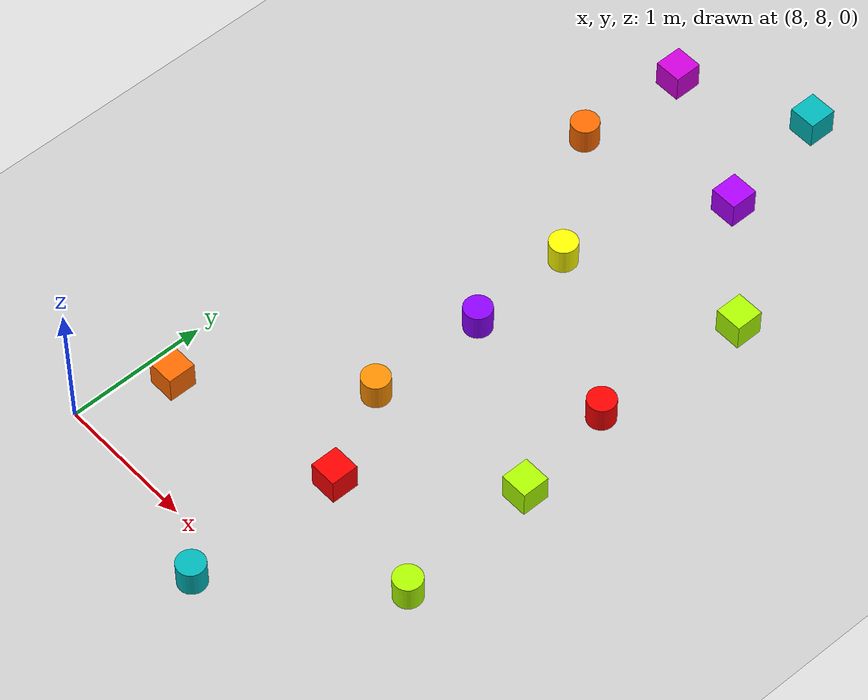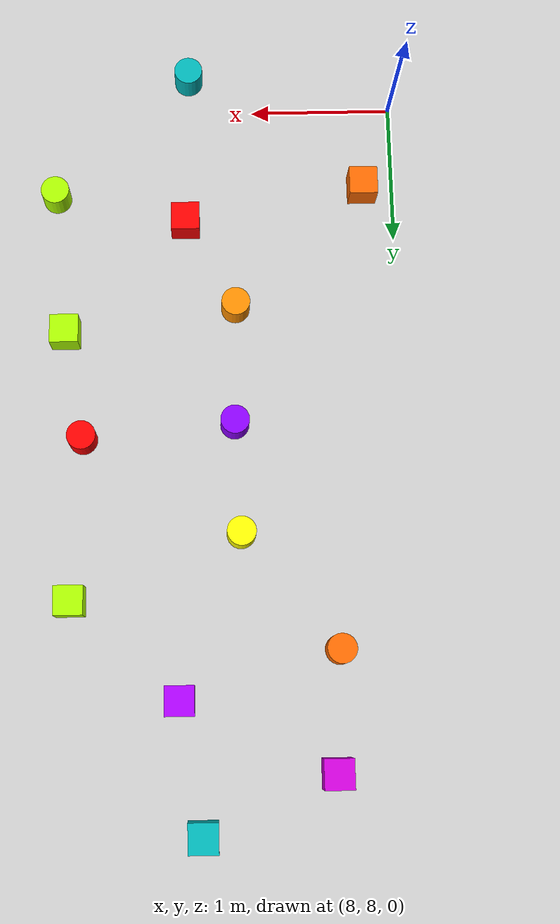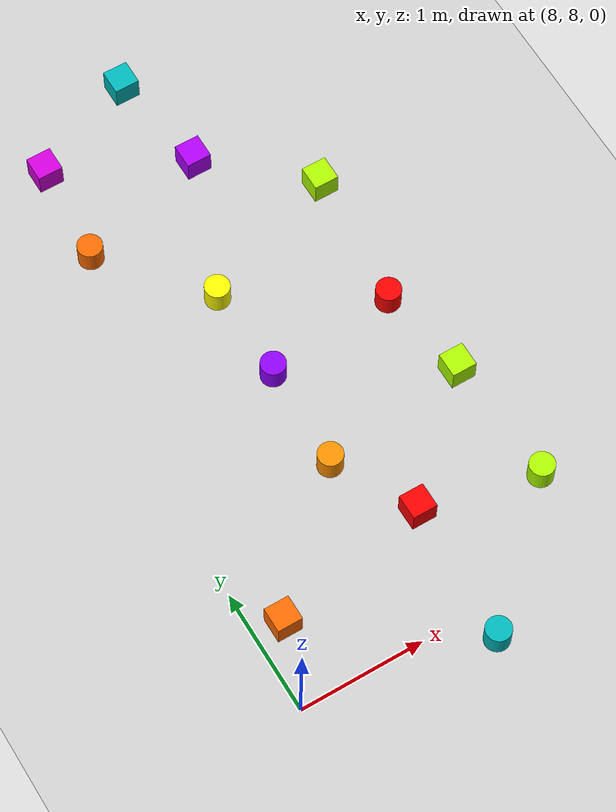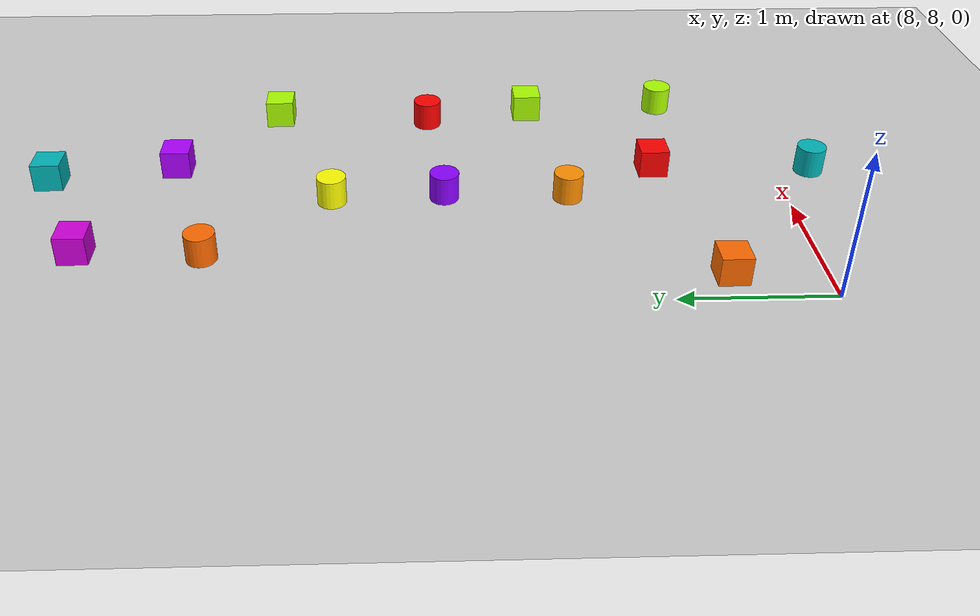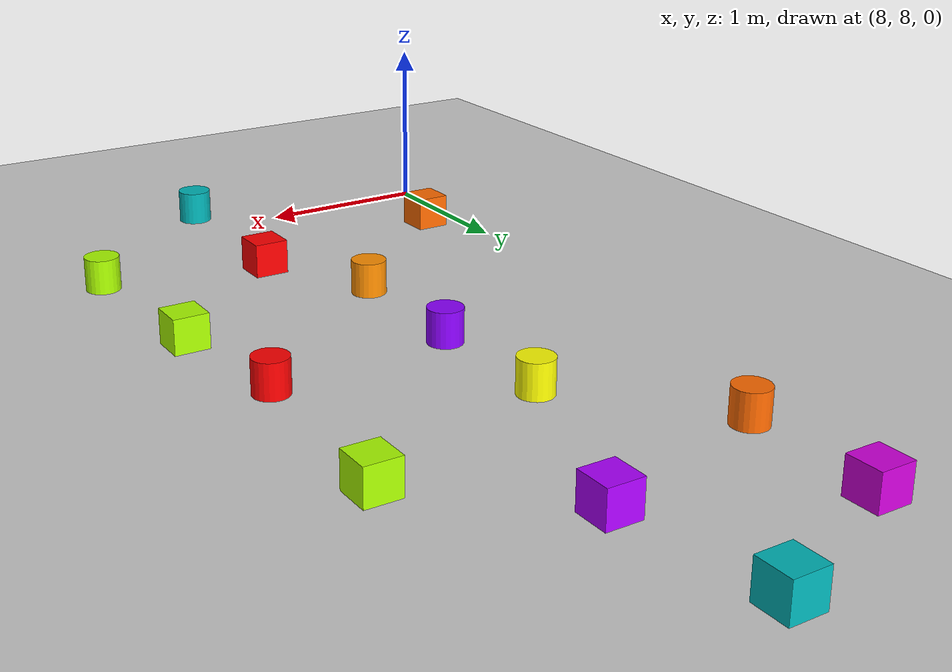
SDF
<sdf version="1.7">
 <world name="default">
  <model name="ground_plane">
   <static>1</static>
   <link name="link">
    <collision name="collision">
     <geometry><plane><normal>0 0 1</normal><size>100 100</size></plane></geometry>
     <surface><friction><ode><mu>100</mu><mu2>50</mu2></ode></friction></surface>
    </collision>
    <visual name="visual">
     <cast_shadows>0</cast_shadows>
     <geometry><plane><normal>0 0 1</normal><size>100 100</size></plane></geometry>
     <material>
      <script><uri>file://media/materials/scripts/gazebo.material</uri><name>Gazebo/Grey</name></script>
     </material>
    </visual>
   </link>
  </model>
  <model name="cube_or">
   <link name="link_2">
    <pose>0 0 0.1 0 -0 0</pose>
    <inertial>
     <mass>1</mass>
     <inertia>
      <ixx>0.166667</ixx>
      <ixy>0</ixy>
      <ixz>0</ixz>
      <iyy>0.166667</iyy>
      <iyz>0</iyz>
      <izz>0.166667</izz>
     </inertia>
    </inertial>
    <visual name="visual">
     <geometry><box><size>0.2 0.2 0.2</size></box></geometry>
     <material>
      <lighting>1</lighting>
      <script><uri>file://media/materials/scripts/gazebo.material</uri><name>Gazebo/Grey</name></script>
      <ambient>1 0.416 0 1</ambient>
      <diffuse>1 0.416 0 1</diffuse>
      <specular>0 0 0 1</specular>
      <emissive>0 0 0 1</emissive>
      <shader type="vertex"><normal_map>__default__</normal_map></shader>
     </material>
    </visual>
    <collision name="collision">
     <geometry><box><size>0.2 0.2 0.2</size></box></geometry>
     <surface>
      <friction>
       <ode><mu>1</mu><mu2>1</mu2><fdir1>0 0 0</fdir1><slip1>0</slip1><slip2>0</slip2></ode>
       <torsional>
        <coefficient>1</coefficient>
        <patch_radius>0</patch_radius>
        <surface_radius>0</surface_radius>
        <use_patch_radius>1</use_patch_radius>
        <ode><slip>0</slip></ode>
       </torsional>
      </friction>
      <bounce><restitution_coefficient>0</restitution_coefficient><threshold>1e+06</threshold></bounce>
      <contact>
       <collide_without_contact>0</collide_without_contact>
       <collide_without_contact_bitmask>1</collide_without_contact_bitmask>
       <collide_bitmask>1</collide_bitmask>
       <ode>
        <soft_cfm>0</soft_cfm>
        <soft_erp>0.2</soft_erp>
        <kp>1e+13</kp>
        <kd>1</kd>
        <max_vel>0.01</max_vel>
        <min_depth>0</min_depth>
       </ode>
       <bullet>
        <split_impulse>1</split_impulse>
        <split_impulse_penetration_threshold>-0.01</split_impulse_penetration_threshold>
        <soft_cfm>0</soft_cfm>
        <soft_erp>0.2</soft_erp>
        <kp>1e+13</kp>
        <kd>1</kd>
       </bullet>
      </contact>
     </surface>
    </collision>
   </link>
   <static>1</static>
   <pose>8.22157 8.6173 0 0 -0 0</pose>
  </model>
  <model name="cylinder_o">
   <link name="link_0">
    <pose>0 0 0.1 0 -0 0</pose>
    <inertial>
     <mass>1</mass>
     <inertia><ixx>0.145833</ixx><ixy>0</ixy><ixz>0</ixz><iyy>0.145833</iyy><iyz>0</iyz><izz>0.125</izz></inertia>
    </inertial>
    <visual name="visual">
     <geometry><cylinder><radius>0.1</radius><length>0.2</length></cylinder></geometry>
     <material>
      <lighting>1</lighting>
      <script><uri>file://media/materials/scripts/gazebo.material</uri><name>Gazebo/Grey</name></script>
      <ambient>1 0.561 0 1</ambient>
      <diffuse>1 0.561 0 1</diffuse>
      <specular>0 0 0 1</specular>
      <emissive>0 0 0 1</emissive>
      <shader type="vertex"><normal_map>__default__</normal_map></shader>
     </material>
    </visual>
    <collision name="collision">
     <geometry><cylinder><radius>0.1</radius><length>0.2</length></cylinder></geometry>
     <surface>
      <friction>
       <ode><mu>1</mu><mu2>1</mu2><fdir1>0 0 0</fdir1><slip1>0</slip1><slip2>0</slip2></ode>
       <torsional>
        <coefficient>1</coefficient>
        <patch_radius>0</patch_radius>
        <surface_radius>0</surface_radius>
        <use_patch_radius>1</use_patch_radius>
        <ode><slip>0</slip></ode>
       </torsional>
      </friction>
      <bounce><restitution_coefficient>0</restitution_coefficient><threshold>1e+06</threshold></bounce>
      <contact>
       <collide_without_contact>0</collide_without_contact>
       <collide_without_contact_bitmask>1</collide_without_contact_bitmask>
       <collide_bitmask>1</collide_bitmask>
       <ode>
        <soft_cfm>0</soft_cfm>
        <soft_erp>0.2</soft_erp>
        <kp>1e+13</kp>
        <kd>1</kd>
        <max_vel>0.01</max_vel>
        <min_depth>0</min_depth>
       </ode>
       <bullet>
        <split_impulse>1</split_impulse>
        <split_impulse_penetration_threshold>-0.01</split_impulse_penetration_threshold>
        <soft_cfm>0</soft_cfm>
        <soft_erp>0.2</soft_erp>
        <kp>1e+13</kp>
        <kd>1</kd>
       </bullet>
      </contact>
     </surface>
    </collision>
   </link>
   <static>1</static>
   <pose>9.15065 9.50932 0 0 -0 0</pose>
  </model>
  <model name="cube_r">
   <link name="link_2">
    <pose>0 0 0.1 0 -0 0</pose>
    <inertial>
     <mass>1</mass>
     <inertia>
      <ixx>0.166667</ixx>
      <ixy>0</ixy>
      <ixz>0</ixz>
      <iyy>0.166667</iyy>
      <iyz>0</iyz>
      <izz>0.166667</izz>
     </inertia>
    </inertial>
    <visual name="visual">
     <geometry><box><size>0.2 0.2 0.2</size></box></geometry>
     <material>
      <lighting>1</lighting>
      <script><uri>file://media/materials/scripts/gazebo.material</uri><name>Gazebo/Grey</name></script>
      <ambient>1 0 0 1</ambient>
      <diffuse>1 0 0 1</diffuse>
      <specular>0 0 0 1</specular>
      <emissive>0 0 0 1</emissive>
      <shader type="vertex"><normal_map>__default__</normal_map></shader>
     </material>
    </visual>
    <collision name="collision">
     <geometry><box><size>0.2 0.2 0.2</size></box></geometry>
     <surface>
      <friction>
       <ode><mu>1</mu><mu2>1</mu2><fdir1>0 0 0</fdir1><slip1>0</slip1><slip2>0</slip2></ode>
       <torsional>
        <coefficient>1</coefficient>
        <patch_radius>0</patch_radius>
        <surface_radius>0</surface_radius>
        <use_patch_radius>1</use_patch_radius>
        <ode><slip>0</slip></ode>
       </torsional>
      </friction>
      <bounce><restitution_coefficient>0</restitution_coefficient><threshold>1e+06</threshold></bounce>
      <contact>
       <collide_without_contact>0</collide_without_contact>
       <collide_without_contact_bitmask>1</collide_without_contact_bitmask>
       <collide_bitmask>1</collide_bitmask>
       <ode>
        <soft_cfm>0</soft_cfm>
        <soft_erp>0.2</soft_erp>
        <kp>1e+13</kp>
        <kd>1</kd>
        <max_vel>0.01</max_vel>
        <min_depth>0</min_depth>
       </ode>
       <bullet>
        <split_impulse>1</split_impulse>
        <split_impulse_penetration_threshold>-0.01</split_impulse_penetration_threshold>
        <soft_cfm>0</soft_cfm>
        <soft_erp>0.2</soft_erp>
        <kp>1e+13</kp>
        <kd>1</kd>
       </bullet>
      </contact>
     </surface>
    </collision>
   </link>
   <static>1</static>
   <pose>9.49713 8.86777 0 0 -0 0</pose>
  </model>
  <model name="cube_gy">
   <link name="link_2">
    <pose>0 0 0.1 0 -0 0</pose>
    <inertial>
     <mass>1</mass>
     <inertia>
      <ixx>0.166667</ixx>
      <ixy>0</ixy>
      <ixz>0</ixz>
      <iyy>0.166667</iyy>
      <iyz>0</iyz>
      <izz>0.166667</izz>
     </inertia>
    </inertial>
    <visual name="visual">
     <geometry><box><size>0.2 0.2 0.2</size></box></geometry>
     <material>
      <lighting>1</lighting>
      <script><uri>file://media/materials/scripts/gazebo.material</uri><name>Gazebo/Grey</name></script>
      <ambient>0.675 1 0 1</ambient>
      <diffuse>0.675 1 0 1</diffuse>
      <specular>0 0 0 1</specular>
      <emissive>0 0 0 1</emissive>
      <shader type="vertex"><normal_map>__default__</normal_map></shader>
     </material>
    </visual>
    <collision name="collision">
     <geometry><box><size>0.2 0.2 0.2</size></box></geometry>
     <surface>
      <friction>
       <ode><mu>1</mu><mu2>1</mu2><fdir1>0 0 0</fdir1><slip1>0</slip1><slip2>0</slip2></ode>
       <torsional>
        <coefficient>1</coefficient>
        <patch_radius>0</patch_radius>
        <surface_radius>0</surface_radius>
        <use_patch_radius>1</use_patch_radius>
        <ode><slip>0</slip></ode>
       </torsional>
      </friction>
      <bounce><restitution_coefficient>0</restitution_coefficient><threshold>1e+06</threshold></bounce>
      <contact>
       <collide_without_contact>0</collide_without_contact>
       <collide_without_contact_bitmask>1</collide_without_contact_bitmask>
       <collide_bitmask>1</collide_bitmask>
       <ode>
        <soft_cfm>0</soft_cfm>
        <soft_erp>0.2</soft_erp>
        <kp>1e+13</kp>
        <kd>1</kd>
        <max_vel>0.01</max_vel>
        <min_depth>0</min_depth>
       </ode>
       <bullet>
        <split_impulse>1</split_impulse>
        <split_impulse_penetration_threshold>-0.01</split_impulse_penetration_threshold>
        <soft_cfm>0</soft_cfm>
        <soft_erp>0.2</soft_erp>
        <kp>1e+13</kp>
        <kd>1</kd>
       </bullet>
      </contact>
     </surface>
    </collision>
   </link>
   <static>1</static>
   <pose>10.3512 9.68524 0 0 -0 0</pose>
  </model>
  <model name="cylinder_gy">
   <link name="link_0">
    <pose>0 0 0.1 0 -0 0</pose>
    <inertial>
     <mass>1</mass>
     <inertia><ixx>0.145833</ixx><ixy>0</ixy><ixz>0</ixz><iyy>0.145833</iyy><iyz>0</iyz><izz>0.125</izz></inertia>
    </inertial>
    <visual name="visual">
     <geometry><cylinder><radius>0.1</radius><length>0.2</length></cylinder></geometry>
     <material>
      <lighting>1</lighting>
      <script><uri>file://media/materials/scripts/gazebo.material</uri><name>Gazebo/Grey</name></script>
      <ambient>0.675 1 0 1</ambient>
      <diffuse>0.675 1 0 1</diffuse>
      <specular>0 0 0 1</specular>
      <emissive>0 0 0 1</emissive>
      <shader type="vertex"><normal_map>__default__</normal_map></shader>
     </material>
    </visual>
    <collision name="collision">
     <geometry><cylinder><radius>0.1</radius><length>0.2</length></cylinder></geometry>
     <surface>
      <friction>
       <ode><mu>1</mu><mu2>1</mu2><fdir1>0 0 0</fdir1><slip1>0</slip1><slip2>0</slip2></ode>
       <torsional>
        <coefficient>1</coefficient>
        <patch_radius>0</patch_radius>
        <surface_radius>0</surface_radius>
        <use_patch_radius>1</use_patch_radius>
        <ode><slip>0</slip></ode>
       </torsional>
      </friction>
      <bounce><restitution_coefficient>0</restitution_coefficient><threshold>1e+06</threshold></bounce>
      <contact>
       <collide_without_contact>0</collide_without_contact>
       <collide_without_contact_bitmask>1</collide_without_contact_bitmask>
       <collide_bitmask>1</collide_bitmask>
       <ode>
        <soft_cfm>0</soft_cfm>
        <soft_erp>0.2</soft_erp>
        <kp>1e+13</kp>
        <kd>1</kd>
        <max_vel>0.01</max_vel>
        <min_depth>0</min_depth>
       </ode>
       <bullet>
        <split_impulse>1</split_impulse>
        <split_impulse_penetration_threshold>-0.01</split_impulse_penetration_threshold>
        <soft_cfm>0</soft_cfm>
        <soft_erp>0.2</soft_erp>
        <kp>1e+13</kp>
        <kd>1</kd>
       </bullet>
      </contact>
     </surface>
    </collision>
   </link>
   <static>1</static>
   <pose>10.4221 8.65761 0 0 -0 0</pose>
  </model>
  <model name="cylinder_vb">
   <link name="link_0">
    <pose>0 0 0.1 0 -0 0</pose>
    <inertial>
     <mass>1</mass>
     <inertia><ixx>0.145833</ixx><ixy>0</ixy><ixz>0</ixz><iyy>0.145833</iyy><iyz>0</iyz><izz>0.125</izz></inertia>
    </inertial>
    <visual name="visual">
     <geometry><cylinder><radius>0.1</radius><length>0.2</length></cylinder></geometry>
     <material>
      <lighting>1</lighting>
      <script><uri>file://media/materials/scripts/gazebo.material</uri><name>Gazebo/Grey</name></script>
      <ambient>0.549 0 1 1</ambient>
      <diffuse>0.549 0 1 1</diffuse>
      <specular>0 0 0 1</specular>
      <emissive>0 0 0 1</emissive>
      <shader type="vertex"><normal_map>__default__</normal_map></shader>
     </material>
    </visual>
    <collision name="collision">
     <geometry><cylinder><radius>0.1</radius><length>0.2</length></cylinder></geometry>
     <surface>
      <friction>
       <ode><mu>1</mu><mu2>1</mu2><fdir1>0 0 0</fdir1><slip1>0</slip1><slip2>0</slip2></ode>
       <torsional>
        <coefficient>1</coefficient>
        <patch_radius>0</patch_radius>
        <surface_radius>0</surface_radius>
        <use_patch_radius>1</use_patch_radius>
        <ode><slip>0</slip></ode>
       </torsional>
      </friction>
      <bounce><restitution_coefficient>0</restitution_coefficient><threshold>1e+06</threshold></bounce>
      <contact>
       <collide_without_contact>0</collide_without_contact>
       <collide_without_contact_bitmask>1</collide_without_contact_bitmask>
       <collide_bitmask>1</collide_bitmask>
       <ode>
        <soft_cfm>0</soft_cfm>
        <soft_erp>0.2</soft_erp>
        <kp>1e+13</kp>
        <kd>1</kd>
        <max_vel>0.01</max_vel>
        <min_depth>0</min_depth>
       </ode>
       <bullet>
        <split_impulse>1</split_impulse>
        <split_impulse_penetration_threshold>-0.01</split_impulse_penetration_threshold>
        <soft_cfm>0</soft_cfm>
        <soft_erp>0.2</soft_erp>
        <kp>1e+13</kp>
        <kd>1</kd>
       </bullet>
      </contact>
     </surface>
    </collision>
   </link>
   <static>1</static>
   <pose>9.17174 10.3547 0 0 -0 0</pose>
  </model>
  <model name="cylinder_bg">
   <link name="link_0">
    <pose>0 0 0.1 0 -0 0</pose>
    <inertial>
     <mass>1</mass>
     <inertia><ixx>0.145833</ixx><ixy>0</ixy><ixz>0</ixz><iyy>0.145833</iyy><iyz>0</iyz><izz>0.125</izz></inertia>
    </inertial>
    <visual name="visual">
     <geometry><cylinder><radius>0.1</radius><length>0.2</length></cylinder></geometry>
     <material>
      <lighting>1</lighting>
      <script><uri>file://media/materials/scripts/gazebo.material</uri><name>Gazebo/Grey</name></script>
      <ambient>0 0.71 0.722 1</ambient>
      <diffuse>0 0.71 0.722 1</diffuse>
      <specular>0 0 0 1</specular>
      <emissive>0 0 0 1</emissive>
      <shader type="vertex"><normal_map>__default__</normal_map></shader>
     </material>
    </visual>
    <collision name="collision">
     <geometry><cylinder><radius>0.1</radius><length>0.2</length></cylinder></geometry>
     <surface>
      <friction>
       <ode><mu>1</mu><mu2>1</mu2><fdir1>0 0 0</fdir1><slip1>0</slip1><slip2>0</slip2></ode>
       <torsional>
        <coefficient>1</coefficient>
        <patch_radius>0</patch_radius>
        <surface_radius>0</surface_radius>
        <use_patch_radius>1</use_patch_radius>
        <ode><slip>0</slip></ode>
       </torsional>
      </friction>
      <bounce><restitution_coefficient>0</restitution_coefficient><threshold>1e+06</threshold></bounce>
      <contact>
       <collide_without_contact>0</collide_without_contact>
       <collide_without_contact_bitmask>1</collide_without_contact_bitmask>
       <collide_bitmask>1</collide_bitmask>
       <ode>
        <soft_cfm>0</soft_cfm>
        <soft_erp>0.2</soft_erp>
        <kp>1e+13</kp>
        <kd>1</kd>
        <max_vel>0.01</max_vel>
        <min_depth>0</min_depth>
       </ode>
       <bullet>
        <split_impulse>1</split_impulse>
        <split_impulse_penetration_threshold>-0.01</split_impulse_penetration_threshold>
        <soft_cfm>0</soft_cfm>
        <soft_erp>0.2</soft_erp>
        <kp>1e+13</kp>
        <kd>1</kd>
       </bullet>
      </contact>
     </surface>
    </collision>
   </link>
   <static>1</static>
   <pose>9.46203 7.74674 0 0 -0 0</pose>
  </model>
  <model name="cylinder_r">
   <link name="link_0">
    <pose>0 0 0.1 0 -0 0</pose>
    <inertial>
     <mass>1</mass>
     <inertia><ixx>0.145833</ixx><ixy>0</ixy><ixz>0</ixz><iyy>0.145833</iyy><iyz>0</iyz><izz>0.125</izz></inertia>
    </inertial>
    <visual name="visual">
     <geometry><cylinder><radius>0.1</radius><length>0.2</length></cylinder></geometry>
     <material>
      <lighting>1</lighting>
      <script><uri>file://media/materials/scripts/gazebo.material</uri><name>Gazebo/Grey</name></script>
      <ambient>1 0 0 1</ambient>
      <diffuse>1 0 0 1</diffuse>
      <specular>0 0 0 1</specular>
      <emissive>0 0 0 1</emissive>
      <shader type="vertex"><normal_map>__default__</normal_map></shader>
     </material>
    </visual>
    <collision name="collision">
     <geometry><cylinder><radius>0.1</radius><length>0.2</length></cylinder></geometry>
     <surface>
      <friction>
       <ode><mu>1</mu><mu2>1</mu2><fdir1>0 0 0</fdir1><slip1>0</slip1><slip2>0</slip2></ode>
       <torsional>
        <coefficient>1</coefficient>
        <patch_radius>0</patch_radius>
        <surface_radius>0</surface_radius>
        <use_patch_radius>1</use_patch_radius>
        <ode><slip>0</slip></ode>
       </torsional>
      </friction>
      <bounce><restitution_coefficient>0</restitution_coefficient><threshold>1e+06</threshold></bounce>
      <contact>
       <collide_without_contact>0</collide_without_contact>
       <collide_without_contact_bitmask>1</collide_without_contact_bitmask>
       <collide_bitmask>1</collide_bitmask>
       <ode>
        <soft_cfm>0</soft_cfm>
        <soft_erp>0.2</soft_erp>
        <kp>1e+13</kp>
        <kd>1</kd>
        <max_vel>0.01</max_vel>
        <min_depth>0</min_depth>
       </ode>
       <bullet>
        <split_impulse>1</split_impulse>
        <split_impulse_penetration_threshold>-0.01</split_impulse_penetration_threshold>
        <soft_cfm>0</soft_cfm>
        <soft_erp>0.2</soft_erp>
        <kp>1e+13</kp>
        <kd>1</kd>
       </bullet>
      </contact>
     </surface>
    </collision>
   </link>
   <static>1</static>
   <pose>10.2268 10.4473 0 0 -0 0</pose>
  </model>
  <model name="cylinder_y">
   <link name="link_0">
    <pose>0 0 0.1 0 -0 0</pose>
    <inertial>
     <mass>1</mass>
     <inertia><ixx>0.145833</ixx><ixy>0</ixy><ixz>0</ixz><iyy>0.145833</iyy><iyz>0</iyz><izz>0.125</izz></inertia>
    </inertial>
    <visual name="visual">
     <geometry><cylinder><radius>0.1</radius><length>0.2</length></cylinder></geometry>
     <material>
      <lighting>1</lighting>
      <script><uri>file://media/materials/scripts/gazebo.material</uri><name>Gazebo/Grey</name></script>
      <ambient>1 1 0 1</ambient>
      <diffuse>1 1 0 1</diffuse>
      <specular>0 0 0 1</specular>
      <emissive>0 0 0 1</emissive>
      <shader type="vertex"><normal_map>__default__</normal_map></shader>
     </material>
    </visual>
    <collision name="collision">
     <geometry><cylinder><radius>0.1</radius><length>0.2</length></cylinder></geometry>
     <surface>
      <friction>
       <ode><mu>1</mu><mu2>1</mu2><fdir1>0 0 0</fdir1><slip1>0</slip1><slip2>0</slip2></ode>
       <torsional>
        <coefficient>1</coefficient>
        <patch_radius>0</patch_radius>
        <surface_radius>0</surface_radius>
        <use_patch_radius>1</use_patch_radius>
        <ode><slip>0</slip></ode>
       </torsional>
      </friction>
      <bounce><restitution_coefficient>0</restitution_coefficient><threshold>1e+06</threshold></bounce>
      <contact>
       <collide_without_contact>0</collide_without_contact>
       <collide_without_contact_bitmask>1</collide_without_contact_bitmask>
       <collide_bitmask>1</collide_bitmask>
       <ode>
        <soft_cfm>0</soft_cfm>
        <soft_erp>0.2</soft_erp>
        <kp>1e+13</kp>
        <kd>1</kd>
        <max_vel>0.01</max_vel>
        <min_depth>0</min_depth>
       </ode>
       <bullet>
        <split_impulse>1</split_impulse>
        <split_impulse_penetration_threshold>-0.01</split_impulse_penetration_threshold>
        <soft_cfm>0</soft_cfm>
        <soft_erp>0.2</soft_erp>
        <kp>1e+13</kp>
        <kd>1</kd>
       </bullet>
      </contact>
     </surface>
    </collision>
   </link>
   <static>1</static>
   <pose>9.14226 11.1223 0 0 -0 0</pose>
  </model>
  <model name="cylinder_or">
   <link name="link_0">
    <pose>0 0 0.1 0 -0 0</pose>
    <inertial>
     <mass>1</mass>
     <inertia><ixx>0.145833</ixx><ixy>0</ixy><ixz>0</ixz><iyy>0.145833</iyy><iyz>0</iyz><izz>0.125</izz></inertia>
    </inertial>
    <visual name="visual">
     <geometry><cylinder><radius>0.1</radius><length>0.2</length></cylinder></geometry>
     <material>
      <lighting>1</lighting>
      <script><uri>file://media/materials/scripts/gazebo.material</uri><name>Gazebo/Grey</name></script>
      <ambient>1 0.416 0 1</ambient>
      <diffuse>1 0.416 0 1</diffuse>
      <specular>0 0 0 1</specular>
      <emissive>0 0 0 1</emissive>
      <shader type="vertex"><normal_map>__default__</normal_map></shader>
     </material>
    </visual>
    <collision name="collision">
     <geometry><cylinder><radius>0.1</radius><length>0.2</length></cylinder></geometry>
     <surface>
      <friction>
       <ode><mu>1</mu><mu2>1</mu2><fdir1>0 0 0</fdir1><slip1>0</slip1><slip2>0</slip2></ode>
       <torsional>
        <coefficient>1</coefficient>
        <patch_radius>0</patch_radius>
        <surface_radius>0</surface_radius>
        <use_patch_radius>1</use_patch_radius>
        <ode><slip>0</slip></ode>
       </torsional>
      </friction>
      <bounce><restitution_coefficient>0</restitution_coefficient><threshold>1e+06</threshold></bounce>
      <contact>
       <collide_without_contact>0</collide_without_contact>
       <collide_without_contact_bitmask>1</collide_without_contact_bitmask>
       <collide_bitmask>1</collide_bitmask>
       <ode>
        <soft_cfm>0</soft_cfm>
        <soft_erp>0.2</soft_erp>
        <kp>1e+13</kp>
        <kd>1</kd>
        <max_vel>0.01</max_vel>
        <min_depth>0</min_depth>
       </ode>
       <bullet>
        <split_impulse>1</split_impulse>
        <split_impulse_penetration_threshold>-0.01</split_impulse_penetration_threshold>
        <soft_cfm>0</soft_cfm>
        <soft_erp>0.2</soft_erp>
        <kp>1e+13</kp>
        <kd>1</kd>
       </bullet>
      </contact>
     </surface>
    </collision>
   </link>
   <static>1</static>
   <pose>8.49558 11.9119 0 0 -0 0</pose>
  </model>
  <model name="cube_v">
   <link name="link_2">
    <pose>0 0 0.1 0 -0 0</pose>
    <inertial>
     <mass>1</mass>
     <inertia>
      <ixx>0.166667</ixx>
      <ixy>0</ixy>
      <ixz>0</ixz>
      <iyy>0.166667</iyy>
      <iyz>0</iyz>
      <izz>0.166667</izz>
     </inertia>
    </inertial>
    <visual name="visual">
     <geometry><box><size>0.2 0.2 0.2</size></box></geometry>
     <material>
      <lighting>1</lighting>
      <script><uri>file://media/materials/scripts/gazebo.material</uri><name>Gazebo/Grey</name></script>
      <ambient>0.682 0 1 1</ambient>
      <diffuse>0.682 0 1 1</diffuse>
      <specular>0 0 0 1</specular>
      <emissive>0 0 0 1</emissive>
      <shader type="vertex"><normal_map>__default__</normal_map></shader>
     </material>
    </visual>
    <collision name="collision">
     <geometry><box><size>0.2 0.2 0.2</size></box></geometry>
     <surface>
      <friction>
       <ode><mu>1</mu><mu2>1</mu2><fdir1>0 0 0</fdir1><slip1>0</slip1><slip2>0</slip2></ode>
       <torsional>
        <coefficient>1</coefficient>
        <patch_radius>0</patch_radius>
        <surface_radius>0</surface_radius>
        <use_patch_radius>1</use_patch_radius>
        <ode><slip>0</slip></ode>
       </torsional>
      </friction>
      <bounce><restitution_coefficient>0</restitution_coefficient><threshold>1e+06</threshold></bounce>
      <contact>
       <collide_without_contact>0</collide_without_contact>
       <collide_without_contact_bitmask>1</collide_without_contact_bitmask>
       <collide_bitmask>1</collide_bitmask>
       <ode>
        <soft_cfm>0</soft_cfm>
        <soft_erp>0.2</soft_erp>
        <kp>1e+13</kp>
        <kd>1</kd>
        <max_vel>0.01</max_vel>
        <min_depth>0</min_depth>
       </ode>
       <bullet>
        <split_impulse>1</split_impulse>
        <split_impulse_penetration_threshold>-0.01</split_impulse_penetration_threshold>
        <soft_cfm>0</soft_cfm>
        <soft_erp>0.2</soft_erp>
        <kp>1e+13</kp>
        <kd>1</kd>
       </bullet>
      </contact>
     </surface>
    </collision>
   </link>
   <static>1</static>
   <pose>9.57331 12.2328 0 0 -0 0</pose>
  </model>
  <model name="cube_rv">
   <link name="link_2">
    <pose>0 0 0.1 0 -0 0</pose>
    <inertial>
     <mass>1</mass>
     <inertia>
      <ixx>0.166667</ixx>
      <ixy>0</ixy>
      <ixz>0</ixz>
      <iyy>0.166667</iyy>
      <iyz>0</iyz>
      <izz>0.166667</izz>
     </inertia>
    </inertial>
    <visual name="visual">
     <geometry><box><size>0.2 0.2 0.2</size></box></geometry>
     <material>
      <lighting>1</lighting>
      <script><uri>file://media/materials/scripts/gazebo.material</uri><name>Gazebo/Grey</name></script>
      <ambient>0.816 0 0.855 1</ambient>
      <diffuse>0.816 0 0.855 1</diffuse>
      <specular>0 0 0 1</specular>
      <emissive>0 0 0 1</emissive>
      <shader type="vertex"><normal_map>__default__</normal_map></shader>
     </material>
    </visual>
    <collision name="collision">
     <geometry><box><size>0.2 0.2 0.2</size></box></geometry>
     <surface>
      <friction>
       <ode><mu>1</mu><mu2>1</mu2><fdir1>0 0 0</fdir1><slip1>0</slip1><slip2>0</slip2></ode>
       <torsional>
        <coefficient>1</coefficient>
        <patch_radius>0</patch_radius>
        <surface_radius>0</surface_radius>
        <use_patch_radius>1</use_patch_radius>
        <ode><slip>0</slip></ode>
       </torsional>
      </friction>
      <bounce><restitution_coefficient>0</restitution_coefficient><threshold>1e+06</threshold></bounce>
      <contact>
       <collide_without_contact>0</collide_without_contact>
       <collide_without_contact_bitmask>1</collide_without_contact_bitmask>
       <collide_bitmask>1</collide_bitmask>
       <ode>
        <soft_cfm>0</soft_cfm>
        <soft_erp>0.2</soft_erp>
        <kp>1e+13</kp>
        <kd>1</kd>
        <max_vel>0.01</max_vel>
        <min_depth>0</min_depth>
       </ode>
       <bullet>
        <split_impulse>1</split_impulse>
        <split_impulse_penetration_threshold>-0.01</split_impulse_penetration_threshold>
        <soft_cfm>0</soft_cfm>
        <soft_erp>0.2</soft_erp>
        <kp>1e+13</kp>
        <kd>1</kd>
       </bullet>
      </contact>
     </surface>
    </collision>
   </link>
   <static>1</static>
   <pose>8.54503 12.713 0 0 -0 0</pose>
  </model>
  <model name="cube_gy_0">
   <link name="link_2">
    <pose>0 0 0.1 0 -0 0</pose>
    <inertial>
     <mass>1</mass>
     <inertia>
      <ixx>0.166667</ixx>
      <ixy>0</ixy>
      <ixz>0</ixz>
      <iyy>0.166667</iyy>
      <iyz>0</iyz>
      <izz>0.166667</izz>
     </inertia>
    </inertial>
    <visual name="visual">
     <geometry><box><size>0.2 0.2 0.2</size></box></geometry>
     <material>
      <lighting>1</lighting>
      <script><uri>file://media/materials/scripts/gazebo.material</uri><name>Gazebo/Grey</name></script>
      <ambient>0.675 1 0 1</ambient>
      <diffuse>0.675 1 0 1</diffuse>
      <specular>0 0 0 1</specular>
      <emissive>0 0 0 1</emissive>
      <shader type="vertex"><normal_map>__default__</normal_map></shader>
     </material>
    </visual>
    <collision name="collision">
     <geometry><box><size>0.2 0.2 0.2</size></box></geometry>
     <surface>
      <friction>
       <ode><mu>1</mu><mu2>1</mu2><fdir1>0 0 0</fdir1><slip1>0</slip1><slip2>0</slip2></ode>
       <torsional>
        <coefficient>1</coefficient>
        <patch_radius>0</patch_radius>
        <surface_radius>0</surface_radius>
        <use_patch_radius>1</use_patch_radius>
        <ode><slip>0</slip></ode>
       </torsional>
      </friction>
      <bounce><restitution_coefficient>0</restitution_coefficient><threshold>1e+06</threshold></bounce>
      <contact>
       <collide_without_contact>0</collide_without_contact>
       <collide_without_contact_bitmask>1</collide_without_contact_bitmask>
       <collide_bitmask>1</collide_bitmask>
       <ode>
        <soft_cfm>0</soft_cfm>
        <soft_erp>0.2</soft_erp>
        <kp>1e+13</kp>
        <kd>1</kd>
        <max_vel>0.01</max_vel>
        <min_depth>0</min_depth>
       </ode>
       <bullet>
        <split_impulse>1</split_impulse>
        <split_impulse_penetration_threshold>-0.01</split_impulse_penetration_threshold>
        <soft_cfm>0</soft_cfm>
        <soft_erp>0.2</soft_erp>
        <kp>1e+13</kp>
        <kd>1</kd>
       </bullet>
      </contact>
     </surface>
    </collision>
   </link>
   <static>1</static>
   <pose>10.3062 11.5668 0 0 -0 0</pose>
  </model>
  <model name="cube_bg">
   <link name="link_2">
    <pose>0 0 0.1 0 -0 0</pose>
    <inertial>
     <mass>1</mass>
     <inertia>
      <ixx>0.166667</ixx>
      <ixy>0</ixy>
      <ixz>0</ixz>
      <iyy>0.166667</iyy>
      <iyz>0</iyz>
      <izz>0.166667</izz>
     </inertia>
    </inertial>
    <visual name="visual">
     <geometry><box><size>0.2 0.2 0.2</size></box></geometry>
     <material>
      <lighting>1</lighting>
      <script><uri>file://media/materials/scripts/gazebo.material</uri><name>Gazebo/Grey</name></script>
      <ambient>0 0.71 0.722 1</ambient>
      <diffuse>0 0.71 0.722 1</diffuse>
      <specular>0 0 0 1</specular>
      <emissive>0 0 0 1</emissive>
      <shader type="vertex"><normal_map>__default__</normal_map></shader>
     </material>
    </visual>
    <collision name="collision">
     <geometry><box><size>0.2 0.2 0.2</size></box></geometry>
     <surface>
      <friction>
       <ode><mu>1</mu><mu2>1</mu2><fdir1>0 0 0</fdir1><slip1>0</slip1><slip2>0</slip2></ode>
       <torsional>
        <coefficient>1</coefficient>
        <patch_radius>0</patch_radius>
        <surface_radius>0</surface_radius>
        <use_patch_radius>1</use_patch_radius>
        <ode><slip>0</slip></ode>
       </torsional>
      </friction>
      <bounce><restitution_coefficient>0</restitution_coefficient><threshold>1e+06</threshold></bounce>
      <contact>
       <collide_without_contact>0</collide_without_contact>
       <collide_without_contact_bitmask>1</collide_without_contact_bitmask>
       <collide_bitmask>1</collide_bitmask>
       <ode>
        <soft_cfm>0</soft_cfm>
        <soft_erp>0.2</soft_erp>
        <kp>1e+13</kp>
        <kd>1</kd>
        <max_vel>0.01</max_vel>
        <min_depth>0</min_depth>
       </ode>
       <bullet>
        <split_impulse>1</split_impulse>
        <split_impulse_penetration_threshold>-0.01</split_impulse_penetration_threshold>
        <soft_cfm>0</soft_cfm>
        <soft_erp>0.2</soft_erp>
        <kp>1e+13</kp>
        <kd>1</kd>
       </bullet>
      </contact>
     </surface>
    </collision>
   </link>
   <static>1</static>
   <pose>9.42853 13.0958 0 0 -0 0</pose>
  </model>
 </world>
</sdf>
